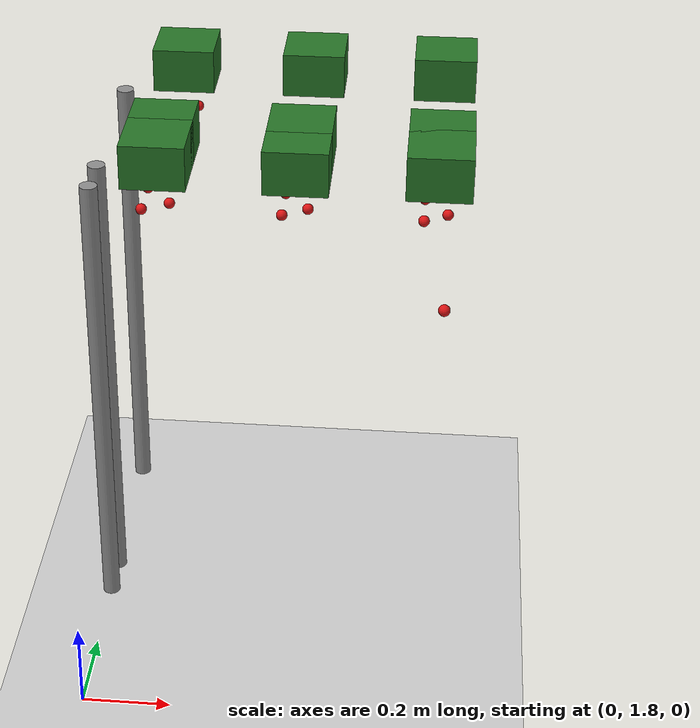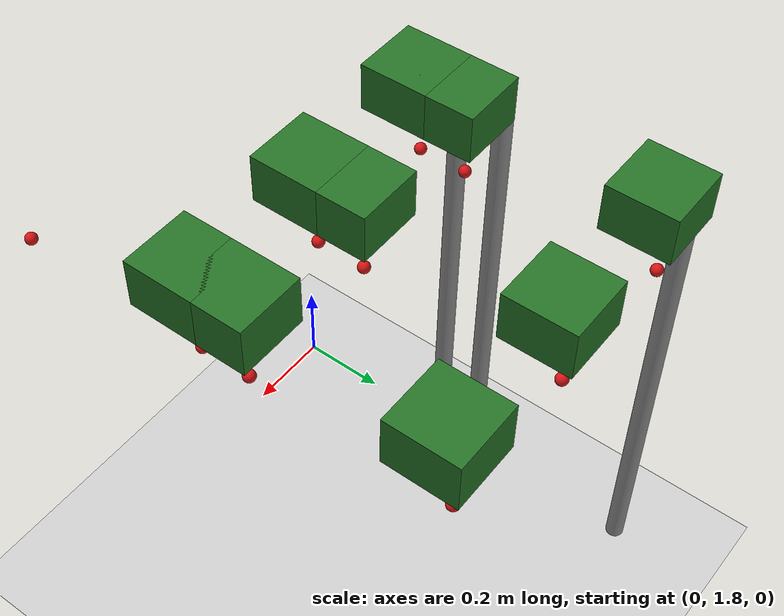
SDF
<sdf version="1.7">
 <world name="irish_polytunnel">
  <include><uri>model://sun</uri></include>
  <include><uri>model://ground_plane</uri></include>
  <model name="row4_L_post0">
   <static>true</static>
   <pose>0.000 2.200 0.550 0 0 0</pose>
   <link name="link">
    <collision name="collision">
     <geometry><cylinder><radius>0.02</radius><length>1.100</length></cylinder></geometry>
    </collision>
    <visual name="visual">
     <geometry><cylinder><radius>0.02</radius><length>1.100</length></cylinder></geometry>
     <material><ambient>0.5 0.5 0.5 1</ambient><diffuse>0.55 0.55 0.55 1</diffuse></material>
    </visual>
   </link>
  </model>
  <model name="row4_L_plant0_foliage">
   <static>true</static>
   <pose>0.150 2.200 1.180 0 0 0</pose>
   <link name="link">
    <visual name="visual">
     <geometry><box><size>0.14 0.14 0.10</size></box></geometry>
     <material><ambient>0.10 0.35 0.10 1</ambient><diffuse>0.15 0.45 0.15 1</diffuse></material>
    </visual>
   </link>
  </model>
  <model name="row4_L_plant0_berry_0">
   <static>true</static>
   <pose>0.120 2.160 1.070 0 0 0</pose>
   <link name="link">
    <visual name="visual">
     <geometry><sphere><radius>0.012</radius></sphere></geometry>
     <material><ambient>0.75 0.05 0.05 1</ambient><diffuse>0.85 0.08 0.08 1</diffuse></material>
    </visual>
   </link>
  </model>
  <model name="row4_L_plant0_berry_1">
   <static>true</static>
   <pose>0.170 2.230 1.050 0 0 0</pose>
   <link name="link">
    <visual name="visual">
     <geometry><sphere><radius>0.012</radius></sphere></geometry>
     <material><ambient>0.75 0.05 0.05 1</ambient><diffuse>0.85 0.08 0.08 1</diffuse></material>
    </visual>
   </link>
  </model>
  <model name="row4_L_plant1_foliage">
   <static>true</static>
   <pose>0.450 2.200 1.180 0 0 0</pose>
   <link name="link">
    <visual name="visual">
     <geometry><box><size>0.14 0.14 0.10</size></box></geometry>
     <material><ambient>0.10 0.35 0.10 1</ambient><diffuse>0.15 0.45 0.15 1</diffuse></material>
    </visual>
   </link>
  </model>
  <model name="row4_L_plant1_berry_0">
   <static>true</static>
   <pose>0.420 2.160 1.070 0 0 0</pose>
   <link name="link">
    <visual name="visual">
     <geometry><sphere><radius>0.012</radius></sphere></geometry>
     <material><ambient>0.75 0.05 0.05 1</ambient><diffuse>0.85 0.08 0.08 1</diffuse></material>
    </visual>
   </link>
  </model>
  <model name="row4_L_plant1_berry_1">
   <static>true</static>
   <pose>0.470 2.230 1.050 0 0 0</pose>
   <link name="link">
    <visual name="visual">
     <geometry><sphere><radius>0.012</radius></sphere></geometry>
     <material><ambient>0.75 0.05 0.05 1</ambient><diffuse>0.85 0.08 0.08 1</diffuse></material>
    </visual>
   </link>
  </model>
  <model name="row4_L_plant2_foliage">
   <static>true</static>
   <pose>0.750 2.200 1.180 0 0 0</pose>
   <link name="link">
    <visual name="visual">
     <geometry><box><size>0.14 0.14 0.10</size></box></geometry>
     <material><ambient>0.10 0.35 0.10 1</ambient><diffuse>0.15 0.45 0.15 1</diffuse></material>
    </visual>
   </link>
  </model>
  <model name="row4_L_plant2_berry_0">
   <static>true</static>
   <pose>0.720 2.160 1.070 0 0 0</pose>
   <link name="link">
    <visual name="visual">
     <geometry><sphere><radius>0.012</radius></sphere></geometry>
     <material><ambient>0.75 0.05 0.05 1</ambient><diffuse>0.85 0.08 0.08 1</diffuse></material>
    </visual>
   </link>
  </model>
  <model name="row4_L_plant2_berry_1">
   <static>true</static>
   <pose>0.770 2.230 1.050 0 0 0</pose>
   <link name="link">
    <visual name="visual">
     <geometry><sphere><radius>0.012</radius></sphere></geometry>
     <material><ambient>0.75 0.05 0.05 1</ambient><diffuse>0.85 0.08 0.08 1</diffuse></material>
    </visual>
   </link>
  </model>
  <model name="row4_R_plant2_berry_1">
   <static>true</static>
   <pose>0.770 1.830 1.050 0 0 0</pose>
   <link name="link">
    <visual name="visual">
     <geometry><sphere><radius>0.012</radius></sphere></geometry>
     <material><ambient>0.75 0.05 0.05 1</ambient><diffuse>0.85 0.08 0.08 1</diffuse></material>
    </visual>
   </link>
  </model>
  <model name="row5_L_post0">
   <static>true</static>
   <pose>0.000 2.700 0.550 0 0 0</pose>
   <link name="link">
    <collision name="collision">
     <geometry><cylinder><radius>0.02</radius><length>1.100</length></cylinder></geometry>
    </collision>
    <visual name="visual">
     <geometry><cylinder><radius>0.02</radius><length>1.100</length></cylinder></geometry>
     <material><ambient>0.5 0.5 0.5 1</ambient><diffuse>0.55 0.55 0.55 1</diffuse></material>
    </visual>
   </link>
  </model>
  <model name="row5_L_plant0_foliage">
   <static>true</static>
   <pose>0.150 2.700 1.180 0 0 0</pose>
   <link name="link">
    <visual name="visual">
     <geometry><box><size>0.14 0.14 0.10</size></box></geometry>
     <material><ambient>0.10 0.35 0.10 1</ambient><diffuse>0.15 0.45 0.15 1</diffuse></material>
    </visual>
   </link>
  </model>
  <model name="row5_L_plant0_berry_0">
   <static>true</static>
   <pose>0.120 2.660 1.070 0 0 0</pose>
   <link name="link">
    <visual name="visual">
     <geometry><sphere><radius>0.012</radius></sphere></geometry>
     <material><ambient>0.75 0.05 0.05 1</ambient><diffuse>0.85 0.08 0.08 1</diffuse></material>
    </visual>
   </link>
  </model>
  <model name="row5_L_plant0_berry_1">
   <static>true</static>
   <pose>0.170 2.730 1.050 0 0 0</pose>
   <link name="link">
    <visual name="visual">
     <geometry><sphere><radius>0.012</radius></sphere></geometry>
     <material><ambient>0.75 0.05 0.05 1</ambient><diffuse>0.85 0.08 0.08 1</diffuse></material>
    </visual>
   </link>
  </model>
  <model name="row5_L_plant1_foliage">
   <static>true</static>
   <pose>0.450 2.700 1.180 0 0 0</pose>
   <link name="link">
    <visual name="visual">
     <geometry><box><size>0.14 0.14 0.10</size></box></geometry>
     <material><ambient>0.10 0.35 0.10 1</ambient><diffuse>0.15 0.45 0.15 1</diffuse></material>
    </visual>
   </link>
  </model>
  <model name="row5_L_plant1_berry_0">
   <static>true</static>
   <pose>0.420 2.660 1.070 0 0 0</pose>
   <link name="link">
    <visual name="visual">
     <geometry><sphere><radius>0.012</radius></sphere></geometry>
     <material><ambient>0.75 0.05 0.05 1</ambient><diffuse>0.85 0.08 0.08 1</diffuse></material>
    </visual>
   </link>
  </model>
  <model name="row5_L_plant1_berry_1">
   <static>true</static>
   <pose>0.470 2.730 1.050 0 0 0</pose>
   <link name="link">
    <visual name="visual">
     <geometry><sphere><radius>0.012</radius></sphere></geometry>
     <material><ambient>0.75 0.05 0.05 1</ambient><diffuse>0.85 0.08 0.08 1</diffuse></material>
    </visual>
   </link>
  </model>
  <model name="row5_L_plant2_foliage">
   <static>true</static>
   <pose>0.750 2.700 1.180 0 0 0</pose>
   <link name="link">
    <visual name="visual">
     <geometry><box><size>0.14 0.14 0.10</size></box></geometry>
     <material><ambient>0.10 0.35 0.10 1</ambient><diffuse>0.15 0.45 0.15 1</diffuse></material>
    </visual>
   </link>
  </model>
  <model name="row5_L_plant2_berry_0">
   <static>true</static>
   <pose>0.720 2.660 1.070 0 0 0</pose>
   <link name="link">
    <visual name="visual">
     <geometry><sphere><radius>0.012</radius></sphere></geometry>
     <material><ambient>0.75 0.05 0.05 1</ambient><diffuse>0.85 0.08 0.08 1</diffuse></material>
    </visual>
   </link>
  </model>
  <model name="row5_L_plant2_berry_1">
   <static>true</static>
   <pose>0.770 2.730 1.050 0 0 0</pose>
   <link name="link">
    <visual name="visual">
     <geometry><sphere><radius>0.012</radius></sphere></geometry>
     <material><ambient>0.75 0.05 0.05 1</ambient><diffuse>0.85 0.08 0.08 1</diffuse></material>
    </visual>
   </link>
  </model>
  <model name="row5_R_post0">
   <static>true</static>
   <pose>0.000 2.300 0.550 0 0 0</pose>
   <link name="link">
    <collision name="collision">
     <geometry><cylinder><radius>0.02</radius><length>1.100</length></cylinder></geometry>
    </collision>
    <visual name="visual">
     <geometry><cylinder><radius>0.02</radius><length>1.100</length></cylinder></geometry>
     <material><ambient>0.5 0.5 0.5 1</ambient><diffuse>0.55 0.55 0.55 1</diffuse></material>
    </visual>
   </link>
  </model>
  <model name="row5_R_plant0_foliage">
   <static>true</static>
   <pose>0.150 2.300 1.180 0 0 0</pose>
   <link name="link">
    <visual name="visual">
     <geometry><box><size>0.14 0.14 0.10</size></box></geometry>
     <material><ambient>0.10 0.35 0.10 1</ambient><diffuse>0.15 0.45 0.15 1</diffuse></material>
    </visual>
   </link>
  </model>
  <model name="row5_R_plant0_berry_0">
   <static>true</static>
   <pose>0.120 2.260 1.070 0 0 0</pose>
   <link name="link">
    <visual name="visual">
     <geometry><sphere><radius>0.012</radius></sphere></geometry>
     <material><ambient>0.75 0.05 0.05 1</ambient><diffuse>0.85 0.08 0.08 1</diffuse></material>
    </visual>
   </link>
  </model>
  <model name="row5_R_plant0_berry_1">
   <static>true</static>
   <pose>0.170 2.330 1.050 0 0 0</pose>
   <link name="link">
    <visual name="visual">
     <geometry><sphere><radius>0.012</radius></sphere></geometry>
     <material><ambient>0.75 0.05 0.05 1</ambient><diffuse>0.85 0.08 0.08 1</diffuse></material>
    </visual>
   </link>
  </model>
  <model name="row5_R_plant1_foliage">
   <static>true</static>
   <pose>0.450 2.300 1.180 0 0 0</pose>
   <link name="link">
    <visual name="visual">
     <geometry><box><size>0.14 0.14 0.10</size></box></geometry>
     <material><ambient>0.10 0.35 0.10 1</ambient><diffuse>0.15 0.45 0.15 1</diffuse></material>
    </visual>
   </link>
  </model>
  <model name="row5_R_plant1_berry_0">
   <static>true</static>
   <pose>0.420 2.260 1.070 0 0 0</pose>
   <link name="link">
    <visual name="visual">
     <geometry><sphere><radius>0.012</radius></sphere></geometry>
     <material><ambient>0.75 0.05 0.05 1</ambient><diffuse>0.85 0.08 0.08 1</diffuse></material>
    </visual>
   </link>
  </model>
  <model name="row5_R_plant1_berry_1">
   <static>true</static>
   <pose>0.470 2.330 1.050 0 0 0</pose>
   <link name="link">
    <visual name="visual">
     <geometry><sphere><radius>0.012</radius></sphere></geometry>
     <material><ambient>0.75 0.05 0.05 1</ambient><diffuse>0.85 0.08 0.08 1</diffuse></material>
    </visual>
   </link>
  </model>
  <model name="row5_R_plant2_foliage">
   <static>true</static>
   <pose>0.750 2.300 1.180 0 0 0</pose>
   <link name="link">
    <visual name="visual">
     <geometry><box><size>0.14 0.14 0.10</size></box></geometry>
     <material><ambient>0.10 0.35 0.10 1</ambient><diffuse>0.15 0.45 0.15 1</diffuse></material>
    </visual>
   </link>
  </model>
  <model name="row5_R_plant2_berry_0">
   <static>true</static>
   <pose>0.720 2.260 1.070 0 0 0</pose>
   <link name="link">
    <visual name="visual">
     <geometry><sphere><radius>0.012</radius></sphere></geometry>
     <material><ambient>0.75 0.05 0.05 1</ambient><diffuse>0.85 0.08 0.08 1</diffuse></material>
    </visual>
   </link>
  </model>
  <model name="row5_R_plant2_berry_1">
   <static>true</static>
   <pose>0.770 2.330 1.050 0 0 0</pose>
   <link name="link">
    <visual name="visual">
     <geometry><sphere><radius>0.012</radius></sphere></geometry>
     <material><ambient>0.75 0.05 0.05 1</ambient><diffuse>0.85 0.08 0.08 1</diffuse></material>
    </visual>
   </link>
  </model>
 </world>
</sdf>
